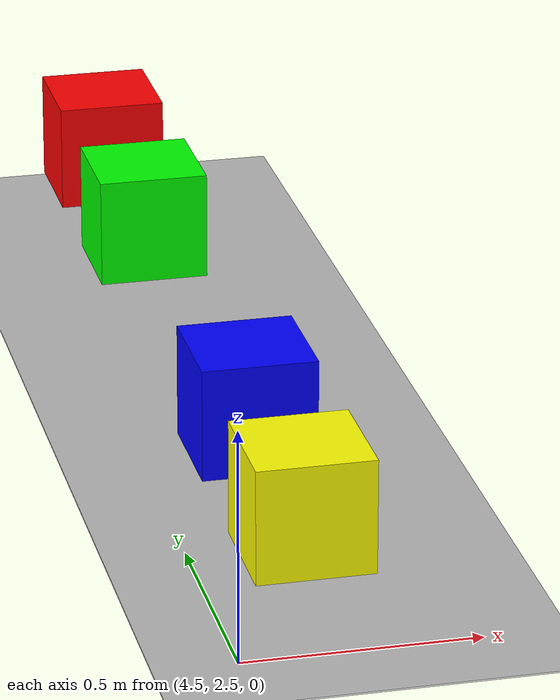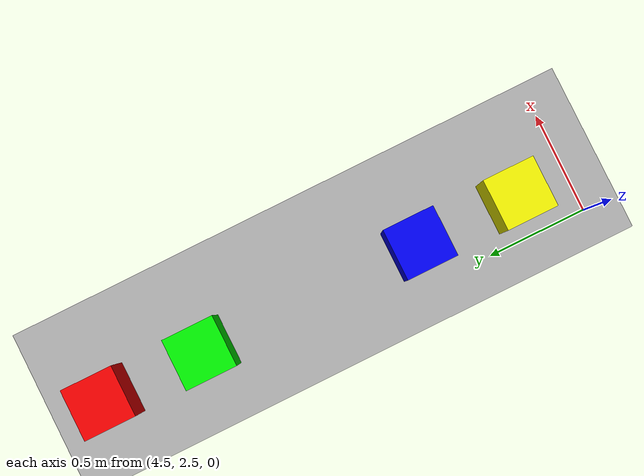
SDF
<?xml version="1.0"?>
<sdf version="1.6">
  <world name="default">
    <physics name="1ms" type="ignored">
      <max_step_size>0.005</max_step_size>
      <real_time_factor>1.0</real_time_factor>
    </physics>
    <plugin
      filename="ignition-gazebo-physics-system"
      name="gz::sim::systems::Physics">
    </plugin>
    <plugin
      filename="ignition-gazebo-user-commands-system"
      name="gz::sim::systems::UserCommands">
    </plugin>
    <plugin
      filename="ignition-gazebo-scene-broadcaster-system"
      name="gz::sim::systems::SceneBroadcaster">
    </plugin>
    <plugin
      filename="gz-sim-sensors-system"
      name="gz::sim::systems::Sensors">
      <render_engine>ogre</render_engine>
    </plugin>
    <plugin name="ros2_linkattacher" filename="libros2_linkattacher.so"/>
    <scene>
      <grid>false</grid>
      <ambient>0.1 0.1 0.2</ambient>
      <background>0.05 0.05 0.1</background>
      <shadows>false</shadows>
    </scene>

    <include>
      <pose>0 0 2.8 0 0 0</pose>
      <uri>model://sun</uri>
    </include>

    <model name="ground_plane">
      <static>true</static>
      <pose>0 0 -0.0001 0 0 0</pose>
      <link name="link">
        <collision name="collision">
          <geometry>
            <plane>
              <normal>0 0 1</normal>
              <size>80 80</size>
            </plane>
          </geometry>
        </collision>
        <visual name="visual">
          <geometry>
            <plane>
              <normal>0 0 1</normal>
              <size>1000 1000</size>
            </plane>
          </geometry>
          <material>
            <ambient>0.8 0.8 0.8 1</ambient>
            <diffuse>0.8 0.8 0.8 1</diffuse>
            <specular>0.8 0.8 0.8 1</specular>
          </material>
        </visual>
      </link>
    </model>

    <include>
      <name>arena_terrain</name>
      <pose>0 0 0.001 0 0 -1.5708</pose>
      <uri>model://arena_terrain</uri>
    </include>

    <model name='crate_red_1'>
      <static>false</static>
      <pose>4.7 4.9 0.2 0 0 0</pose>

      <link name='box_link'>
        <!-- ===== VISUAL (Appearance) ===== -->
        <visual name='visual'>
          <pose>0 0 0 0 0 0</pose>
          <cast_shadows>true</cast_shadows>
          <geometry>
            <box>
              <size>0.25 0.25 0.25</size>
            </box>
          </geometry>
          <material>
            <ambient>0.8 0.0 0.0 1.0</ambient>
            <diffuse>1.0 0.0 0.0 1.0</diffuse>
            <specular>0.5 0.5 0.5 1.0</specular>
            <emissive>0.0 0.0 0.0 1.0</emissive>
          </material>
        </visual>

        <!-- ===== COLLISION (Physics) ===== -->
        <collision name='collision'>
          <pose>0 0 0 0 0 0</pose>
          <geometry>
            <box>
              <size>0.25 0.25 0.25</size>
            </box>
          </geometry>
          <surface>
            <friction>
              <ode>
                <mu>0.7</mu>
                <mu2>0.7</mu2>
                <slip1>0.0</slip1>
                <slip2>0.0</slip2>
              </ode>
            </friction>
            <contact>
              <ode>
                <soft_cfm>0.0</soft_cfm>
                <soft_erp>0.2</soft_erp>
                <kp>1e13</kp>
                <kd>1.0</kd>
                <max_vel>0.01</max_vel>
                <min_depth>0.0</min_depth>
              </ode>
            </contact>
          </surface>
        </collision>

        <!-- ===== INERTIAL (Mass and Moment) ===== -->
        <inertial>
          <mass>0.1</mass>
          <pose>0 0 0 0 0 0</pose>
          <inertia>
            <ixx>0.04167</ixx>
            <iyy>0.04167</iyy>
            <izz>0.04167</izz>
            <ixy>0.0</ixy>
            <ixz>0.0</ixz>
            <iyz>0.0</iyz>
          </inertia>
        </inertial>
      </link>
    </model>

    <!-- ==================== BOX 2 (GREEN) - For Pair 2 (Lifter2) ==================== -->
    <model name='crate_green_2'>
      <static>false</static>
      <pose>4.7 4.4 0.2 0 0 0</pose>

      <link name='box_link'>
        <!-- ===== VISUAL (Appearance) ===== -->
        <visual name='visual'>
          <pose>0 0 0 0 0 0</pose>
          <cast_shadows>true</cast_shadows>
          <geometry>
            <box>
              <size>0.25 0.25 0.25</size>
            </box>
          </geometry>
          <material>
            <ambient>0.0 0.8 0.0 1.0</ambient>
            <diffuse>0.0 1.0 0.0 1.0</diffuse>
            <specular>0.5 0.5 0.5 1.0</specular>
            <emissive>0.0 0.0 0.0 1.0</emissive>
          </material>
        </visual>

        <!-- ===== COLLISION (Physics) ===== -->
        <collision name='collision'>
          <pose>0 0 0 0 0 0</pose>
          <geometry>
            <box>
              <size>0.25 0.25 0.25</size>
            </box>
          </geometry>
          <surface>
            <friction>
              <ode>
                <mu>0.7</mu>
                <mu2>0.7</mu2>
                <slip1>0.0</slip1>
                <slip2>0.0</slip2>
              </ode>
            </friction>
            <contact>
              <ode>
                <soft_cfm>0.0</soft_cfm>
                <soft_erp>0.2</soft_erp>
                <kp>1e13</kp>
                <kd>1.0</kd>
                <max_vel>0.01</max_vel>
                <min_depth>0.0</min_depth>
              </ode>
            </contact>
          </surface>
        </collision>

        <!-- ===== INERTIAL (Mass and Moment) ===== -->
        <inertial>
          <mass>0.1</mass>
          <pose>0 0 0 0 0 0</pose>
          <inertia>
            <ixx>0.04167</ixx>
            <iyy>0.04167</iyy>
            <izz>0.04167</izz>
            <ixy>0.0</ixy>
            <ixz>0.0</ixz>
            <iyz>0.0</iyz>
          </inertia>
        </inertial>
      </link>
    </model>

    <!-- ==================== BOX 3 (BLUE) - For Pair 3 (Lifter3) ==================== -->
    <model name='crate_blue_3'>
      <static>false</static>
      <pose>4.7 3.3 0.2 0 0 0</pose>

      <link name='box_link'>
        <!-- ===== VISUAL (Appearance) ===== -->
        <visual name='visual'>
          <pose>0 0 0 0 0 0</pose>
          <cast_shadows>true</cast_shadows>
          <geometry>
            <box>
              <size>0.25 0.25 0.25</size>
            </box>
          </geometry>
          <material>
            <ambient>0.0 0.0 0.8 1.0</ambient>
            <diffuse>0.0 0.0 1.0 1.0</diffuse>
            <specular>0.5 0.5 0.5 1.0</specular>
            <emissive>0.0 0.0 0.0 1.0</emissive>
          </material>
        </visual>

        <!-- ===== COLLISION (Physics) ===== -->
        <collision name='collision'>
          <pose>0 0 0 0 0 0</pose>
          <geometry>
            <box>
              <size>0.25 0.25 0.25</size>
            </box>
          </geometry>
          <surface>
            <friction>
              <ode>
                <mu>0.7</mu>
                <mu2>0.7</mu2>
                <slip1>0.0</slip1>
                <slip2>0.0</slip2>
              </ode>
            </friction>
            <contact>
              <ode>
                <soft_cfm>0.0</soft_cfm>
                <soft_erp>0.2</soft_erp>
                <kp>1e13</kp>
                <kd>1.0</kd>
                <max_vel>0.01</max_vel>
                <min_depth>0.0</min_depth>
              </ode>
            </contact>
          </surface>
        </collision>

        <!-- ===== INERTIAL (Mass and Moment) ===== -->
        <inertial>
          <mass>0.1</mass>
          <pose>0 0 0 0 0 0</pose>
          <inertia>
            <ixx>0.04167</ixx>
            <iyy>0.04167</iyy>
            <izz>0.04167</izz>
            <ixy>0.0</ixy>
            <ixz>0.0</ixz>
            <iyz>0.0</iyz>
          </inertia>
        </inertial>
      </link>
    </model>

    <!-- ==================== BOX 4 (YELLOW) - For Pair 4 (Lifter4) ==================== -->
    <model name='crate_yellow_4'>
      <static>false</static>
      <pose>4.7 2.8 0.2 0 0 0</pose>

      <link name='box_link'>
        <!-- ===== VISUAL (Appearance) ===== -->
        <visual name='visual'>
          <pose>0 0 0 0 0 0</pose>
          <cast_shadows>true</cast_shadows>
          <geometry>
            <box>
              <size>0.25 0.25 0.25</size>
            </box>
          </geometry>
          <material>
            <ambient>0.8 0.8 0.0 1.0</ambient>
            <diffuse>1.0 1.0 0.0 1.0</diffuse>
            <specular>0.5 0.5 0.5 1.0</specular>
            <emissive>0.0 0.0 0.0 1.0</emissive>
          </material>
        </visual>

        <!-- ===== COLLISION (Physics) ===== -->
        <collision name='collision'>
          <pose>0 0 0 0 0 0</pose>
          <geometry>
            <box>
              <size>0.25 0.25 0.25</size>
            </box>
          </geometry>
          <surface>
            <friction>
              <ode>
                <mu>0.7</mu>
                <mu2>0.7</mu2>
                <slip1>0.0</slip1>
                <slip2>0.0</slip2>
              </ode>
            </friction>
            <contact>
              <ode>
                <soft_cfm>0.0</soft_cfm>
                <soft_erp>0.2</soft_erp>
                <kp>1e13</kp>
                <kd>1.0</kd>
                <max_vel>0.01</max_vel>
                <min_depth>0.0</min_depth>
              </ode>
            </contact>
          </surface>
        </collision>

        <!-- ===== INERTIAL (Mass and Moment) ===== -->
        <inertial>
          <mass>0.1</mass>
          <pose>0 0 0 0 0 0</pose>
          <inertia>
            <ixx>0.04167</ixx>
            <iyy>0.04167</iyy>
            <izz>0.04167</izz>
            <ixy>0.0</ixy>
            <ixz>0.0</ixz>
            <iyz>0.0</iyz>
          </inertia>
        </inertial>
      </link>
    </model>
  </world>
</sdf>

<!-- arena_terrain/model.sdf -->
<sdf version='1.8'>
  <model name='arena_terrain'>
    <static>1</static>
    <link name="link">
      <collision name="floor_collision">
        <geometry>
          <plane>
            <normal>0 0 1</normal>
            <size>2.4384 2.4384</size>
          </plane>
        </geometry>
        <surface>
          <friction>
            <ode>
              <mu>100</mu>
              <mu2>50</mu2>
            </ode>
          </friction>
        </surface>
      </collision>

      <visual name="visual">
        <cast_shadows>false</cast_shadows>
        <geometry>
          <mesh>
            <uri>model://arena_terrain/meshes/arena_terrain.dae</uri>
            <scale>5 5 1</scale>

          </mesh>
        </geometry>
      </visual>
    </link>
  </model>
</sdf>
